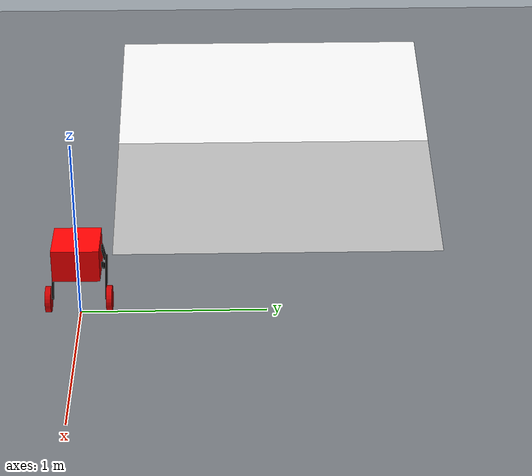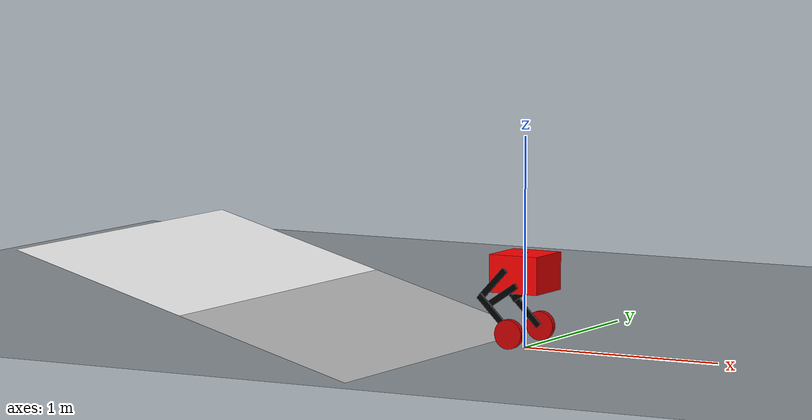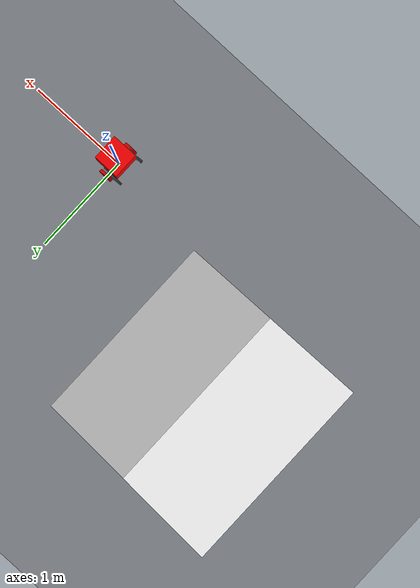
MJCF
<mujoco model="Stoupento">
	<compiler angle="radian" />
	<size njmax="500" nconmax="100" />

	<asset>
		<texture builtin="gradient" height="256" rgb1=".9 .9 1." rgb2=".2 .3 .4" type="skybox" width="256" />
		<texture builtin="checker" height="512" name="texplane" rgb1=".2 .3 .4" rgb2=".1 0.15 0.2" type="2d" width="512" />
		<material name="floorplane" reflectance="0.5" texrepeat="1 1" texture="texplane" texuniform="true" />

		<texture builtin="flat" height="1278" mark="cross" markrgb="1 1 1" name="texgeom" random="0.01" rgb1="0.8 0.6 0.4" rgb2="0.8 0.6 0.4" type="cube" width="127" />
		<texture type="skybox" builtin="gradient" rgb1="0.44 0.85 0.56" rgb2="0.46 0.87 0.58" width="32" height="32"></texture>

		<material name="floor_mat" specular="0" shininess="0.5" reflectance="0" rgba="0.2 0.2 0.2 1"></material>
		<material name="table_mat" specular="0" shininess="0.5" reflectance="0" rgba="0.93 0.93 0.93 1"></material>
		<material name="block_mat" specular="0" shininess="0.5" reflectance="0" rgba="0.2 0.2 0.2 1"></material>
		<material name="puck_mat" specular="0" shininess="0.5" reflectance="0" rgba="0.2 0.2 0.2 1"></material>
		<material name="MatPlane" reflectance="0.5" shininess="1" specular="1" texrepeat="60 60" texture="texplane" />

		<!-- Ramp Mesh -->
		<!-- Terrain -->
		<hfield name="terrain" ncol="201" nrow="201" size="30 30 1 0.1"/>
	</asset>

	<worldbody>
		<geom name='floor' pos='0 0 0' size='10 10 0.125' type='plane' material='floor_mat' condim='3' conaffinity='15'/>
        <geom name='ramp_down' pos='-2 1.1 0' euler="0 0.27 0" size='1 1 0.00001' type='box' material='table_mat' />
        <light mode='trackcom' pos='0 0 5' dir='0 0 -1'/>
        <light directional='true' pos='0 0 3' dir='0 0 -1' diffuse='0.2 0.2 0.2' specular='0 0 0'/>

		<!--Terrain-->

		<body name="body" pos="0 0 0" euler="0 0 3.14">

			<joint name="base_com" type="free" />
			<!--geom size="0.25 0.25 0.25" pos="0 0 1" type="box" rgba="0.9 0 0 1" /-0.02578-->
			<geom size="0.125 0.125 0.09" pos="0 0 0.35953" type="box" rgba="1 0 0 1" />
			<inertial pos="0 0 0.35953" mass="1" diaginertia="0.007908 0.007908 0.010417" />

			<body name="Stoupento__right_link2" pos="-0.02133 0.125 0.30973" quat="-0.293145 1.65745e-06 0.956068 1.65745e-06">
				<inertial pos="-0.094 0.005 0" quat="0.5 0.5 0.5 0.5" mass="0.2" diaginertia="0.000604067 0.000590733 1.66667e-05" />
				<joint name="Stoupento__link2_bodyR" pos="0 0 0" axis="0 1 0" />
				<geom size="0.094 0.005 0.015" pos="-0.094 0.005 0" type="box" rgba="0 0 0 1" />
				<body name="Stoupento__right_link1" pos="-0.188 0.015 -0.06" quat="0.636703 1.78329e-07 0.771109 1.78329e-07">
					<inertial pos="-0.12 0.005 0" quat="0.5 0.5 0.5 0.5" mass="0.2" diaginertia="0.000975 0.000961667 1.66667e-05" />
					<joint name="Stoupento__link1_link2R" pos="-0.06 0 0" axis="0 1 0" damping="0.5" />
					<geom size="0.12 0.005 0.015" pos="-0.12 0.005 0" type="box" rgba="0 0 0 1" />
					<body name="Stoupento__right_wheel" pos="-0.24 0.025 0" quat="0.653285 0.653281 0.270596 -0.270595">
						<inertial pos="0 0 0" quat="0.5 0.5 -0.5 0.5" mass="0.3" diaginertia="0.000735 0.00039 0.00039" />
						<joint name="Stoupento__wheel_link1R" pos="0 0 0" axis="0 0 1"/>
						<geom size="0.07 0.015" type="cylinder" rgba="0.8 0 0 1" />
					</body>
				</body>
			</body>
			<body name="Stoupento__left_link2" pos="-0.02133 -0.125 0.30973" quat="-0.293145 1.65745e-06 0.956068 1.65745e-06">
				<inertial pos="-0.094 -0.005 0" quat="0.5 0.5 0.5 0.5" mass="0.2" diaginertia="0.000604067 0.000590733 1.66667e-05" />
				<joint name="Stoupento__link2_bodyL" pos="0 0 0" axis="0 1 0" />
				<geom size="0.094 0.005 0.015" pos="-0.094 -0.005 0" type="box" rgba="0 0 0 1" />
				<body name="Stoupento__left_link1" pos="-0.188 -0.01 -0.06" quat="0.636703 1.78329e-07 0.771109 1.78329e-07">
					<inertial pos="-0.12 -0.005 0" quat="0.5 0.5 0.5 0.5" mass="0.2" diaginertia="0.000975 0.000961667 1.66667e-05" />
					<joint name="Stoupento__link1_link2L" pos="-0.06 0 0" axis="0 -1 0" damping="0.5" />
					<geom size="0.12 0.005 0.015" pos="-0.12 -0.005 0" type="box" rgba="0 0 0 1" />
					<body name="Stoupento__left_wheel" pos="-0.24 -0.025 0" quat="0.653285 0.653281 0.270596 -0.270595">
						<inertial pos="0 0 0" quat="0.5 0.5 -0.5 0.5" mass="0.3" diaginertia="0.000735 0.00039 0.00039" />
						<joint name="Stoupento__wheel_link1L" pos="0 0 0" axis="0 0 1"/>
						<geom size="0.07 0.015" type="cylinder" rgba="0.8 0 0 1" />
					</body>
				</body>
			</body>
			<body name="Stoupento__right_link4" pos="0.03831 0.125 0.38107" quat="-0.399517 1.74638e-06 0.916726 1.74638e-06">
				<inertial pos="-0.0965 0.005 0" quat="0.5 0.5 0.5 0.5" mass="0.1" diaginertia="0.000317908 0.000311242 8.33333e-06" />
				<joint name="Stoupento__link4_bodyR" pos="0 0 0" axis="0 1 0" />
				<geom size="0.0965 0.005 0.015" pos="-0.0965 0.005 0" type="box" rgba="0 0 0 1" />
			</body>
			<body name="Stoupento__left_link4" pos="0.03831 -0.125 0.38107" quat="-0.399517 1.74638e-06 0.916726 1.74638e-06">
				<inertial pos="-0.0965 -0.005 0" quat="0.5 0.5 0.5 0.5" mass="0.1" diaginertia="0.000317908 0.000311242 8.33333e-06" />
				<joint name="Stoupento__link4_bodyL" pos="0 0 0" axis="0 1 0" />
				<geom size="0.0965 0.005 0.015" pos="-0.0965 -0.005 0" type="box" rgba="0 0 0 1" />
			</body>
			<body name="imu_link" pos="0 0 0.45" euler="0 0 0">
				<!-- quat="0.7071 0 -0.7071 0" -->
				<geom size="0.01 0.01 0.004" type="box" rgba="0 0 0 1" />
				<inertial pos="0 0 0" mass="0.001" diaginertia="0.0000000416667 0.0000000416667 0.0000000416667" />
				<joint name="imu_joint" pos="0 0 0" />
			</body>
		</body>
	</worldbody>

	<equality>
		<connect body2='Stoupento__left_link4' body1='Stoupento__left_link1' anchor='0 0 0' solref='0.005 1' />
		<connect body2='Stoupento__right_link4' body1='Stoupento__right_link1' anchor='0 0 0' solref='0.005 1' />
	</equality>

	<actuator>
		<!-- User parameter is the maximum no-load motor RPM -->
		<position name='left_hip' joint='Stoupento__link2_bodyL' gear='1' ctrllimited='true' ctrlrange='-0.2 0.3' kp="25" />
		<position name='right_hip' joint='Stoupento__link2_bodyR' gear='1' ctrllimited='true' ctrlrange='-0.2 0.3' kp="25" />
		<motor name='left_wheel' joint='Stoupento__wheel_link1L' gear='1' ctrllimited='true' ctrlrange='-1 1'/>
		<motor name='right_wheel' joint='Stoupento__wheel_link1R' gear='1' ctrllimited='true' ctrlrange='-1 1'/>
	</actuator>

	<sensor>
		<framequat name='imu' objtype='body' objname='imu_link' user="4" />
	</sensor>

</mujoco>
